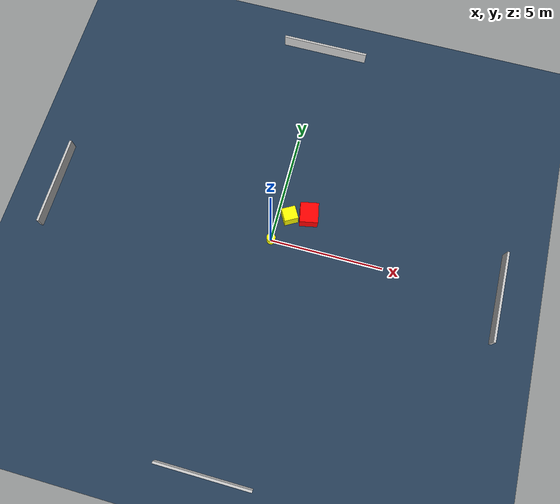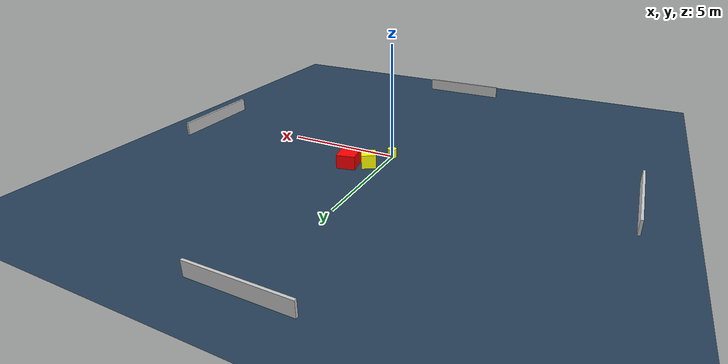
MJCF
<?xml version="1.0" ?>
<mujoco model="generated_environment">
  <option timestep="0.01" integrator="RK4" cone="elliptic"/>
  <default>
    <geom density="1"/>
  </default>
  <asset>
    <texture builtin="gradient" height="3072" name="skybox" rgb1="0.3 0.5 0.7" rgb2="0 0 0" type="skybox" width="512"/>
    <texture builtin="checker" height="300" name="groundplane" rgb1="0.2 0.3 0.4" rgb2="0.1 0.2 0.3" type="2d" width="300"/>
    <material name="groundplane" reflectance="0.2" texrepeat="5 5" texture="groundplane"/>
  </asset>
  <worldbody>
    <light dir="0 0 -1" directional="true" pos="0 0 1.5"/>
    <geom condim="3" friction="0.5 0.005 0.001" material="groundplane" name="floor" pos="0 0 0" size="0 0 0.05" type="plane"/>
    <body name="walls">
      <geom name="wall_1" condim="4" pos="-10.0 0.0 0.3" rgba="0.800000011920929 0.800000011920929 0.800000011920929 1.0" size="0.05 2.0 0.3" type="box"/>
      <geom name="wall_2" condim="4" pos="10.0 0.0 0.3" rgba="0.800000011920929 0.800000011920929 0.800000011920929 1.0" size="0.05 2.0 0.3" type="box"/>
      <geom name="wall_3" condim="4" pos="0.0 -10.0 0.3" rgba="0.800000011920929 0.800000011920929 0.800000011920929 1.0" size="2.0 0.05 0.3" type="box"/>
      <geom name="wall_4" condim="4" pos="0.0 10.0 0.3" rgba="0.800000011920929 0.800000011920929 0.800000011920929 1.0" size="2.0 0.05 0.3" type="box"/>
    </body>
    <body name="robot">
      <joint name="joint_x" type="slide" pos="0 0 0" axis="1 0 0"/>
      <joint name="joint_y" type="slide" pos="0 0 0" axis="0 1 0"/>
      <geom name="robot" type="cylinder" pos="0.0 0.0 0.2" size="0.2 0.2 0.0" mass="5.0" friction="1.0 0.005 0.0001" condim="4" rgba="1.0 1.0 0.0 1.0"/>
    </body>
    <body name="obstacle_1_movable">
      <geom name="obstacle_1_movable" condim="4" pos="0.5190962349717531 1.223241054750508 0.3" euler="0 0 299.49948792861704" friction="0.0 0.005 0.001" rgba="1.0 1.0 0.0 1.0" size="0.29862985789012886 0.3114772313045181 0.3" type="box" mass="0.1"/>
      <joint type="free"/>
    </body>
    <body name="obstacle_2_static">
      <geom name="obstacle_2_static" condim="4" pos="1.3269801229881046 1.494400428486657 0.3" euler="0 0 101.50563326347756" friction="0.0 0.005 0.001" rgba="1.0 0.0 0.0 1.0" size="0.45831787788551115 0.4039260612479093 0.3" type="box"/>
    </body>
  </worldbody>
  <actuator>
    <motor name="actuator_x" joint="joint_x" gear="1" ctrlrange="-1 1"/>
    <motor name="actuator_y" joint="joint_y" gear="1" ctrlrange="-1 1"/>
  </actuator>
</mujoco>
